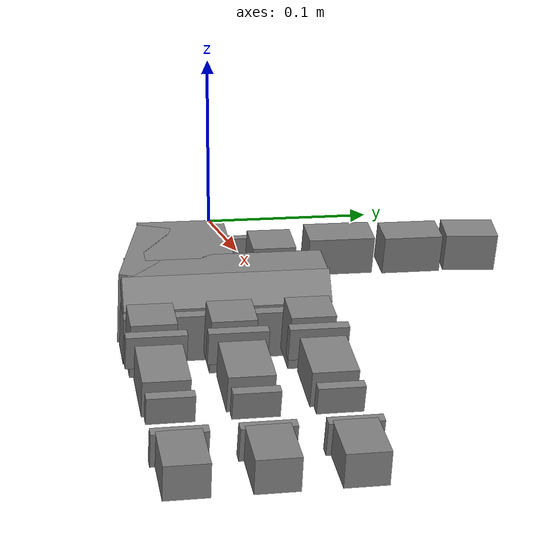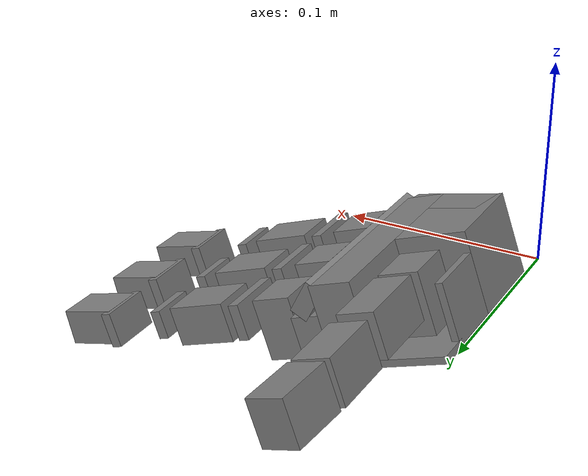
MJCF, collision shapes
<mujoco model="leap_lh">
  <compiler angle="radian" autolimits="true"/>

  <option timestep="0.01" integrator="Euler" iterations="5" ls_iterations="8">
    <flag eulerdamp="disable"/>
  </option>

  <custom>
    <numeric data="30" name="max_contact_points"/>
    <numeric data="12" name="max_geom_pairs"/>
  </custom>

  <asset>
    <material name="black" rgba="0.2 0.2 0.2 1"/>
    <material name="gray" rgba="0.5 0.5 0.5 1"/>
    <mesh name="leap_mount" file="assets/leap_mount.obj"/>

    <mesh name="palm" file="assets/palm_left.obj"/>
    <mesh name="base" file="assets/base.obj"/>
    <mesh name="proximal" file="assets/proximal.obj"/>
    <mesh name="medial" file="assets/medial.obj"/>
    <mesh name="distal" file="assets/distal.obj"/>
    <mesh name="tip" file="assets/tip.obj"/>
    <mesh name="thumb_mp_left" file="assets/thumb_mp_left.obj"/>
    <mesh name="thumb_base" file="assets/thumb_base.obj"/>
    <mesh name="thumb_proximal" file="assets/thumb_proximal.obj"/>
    <mesh name="thumb_distal" file="assets/thumb_distal.obj"/>
    <mesh name="thumb_tip" file="assets/thumb_tip.obj"/>
  </asset>

  <default>
    <default class="leap_lh">
      <geom group="3" friction="0.2" solref="0.02 1.5" solimp="0.9 0.99 0.001"/>
      <default class="visual">
        <geom group="2" type="mesh" contype="0" conaffinity="0" density="0" material="black"/>
      </default>
      <default class="tip">
        <geom size="0.01 0.012 0.016" pos="-0.0012969 -0.0335524 0.0145207"
          quat="0.703552 0.709596 -0.0292107 -0.0252203" type="box" friction="0.7 0.05 0.0002" rgba=".5 .5 .5 .3"/>
      </default>
      <default class="thumb_tip">
        <geom size="0.01 0.012 0.016" pos="-0.00127744 -0.0455619 -0.0144774"
          quat="0.708101 0.705072 -0.0294902 -0.024426" type="box" friction="0.7 0.05 0.0002" rgba=".5 .5 .5 .3"/>
      </default>

      <position kp="3.0" inheritrange="1"/>
      <joint axis="0 0 -1" damping="0.2" armature="0.00149376" actuatorfrcrange="-0.2196 0.2196" frictionloss="0.02"/>

      <default class="mcp">
        <joint range="-0.314 2.23"/>
      </default>
      <default class="rot">
        <joint range="-1.047 1.047"/>
      </default>
      <default class="pip">
        <joint range="-0.506 1.885"/>
      </default>
      <default class="dip">
        <joint range="-0.366 2.042"/>
      </default>
      <default class="thumb_cmc">
        <joint range="-2.094 0.349"/>
      </default>
      <default class="thumb_axl">
        <joint range="-2.094 0.349"/>
      </default>
      <default class="thumb_mcp">
        <joint range="-0.47 2.443"/>
      </default>
      <default class="thumb_ipl">
        <joint range="-1.34 1.88"/>
      </default>

    </default>
  </default>

  <contact>
    <exclude body1="palm" body2="if_bs"/>
    <exclude body1="palm" body2="mf_bs"/>
    <exclude body1="palm" body2="rf_bs"/>
    <exclude body1="palm" body2="th_mp"/>

    <exclude body1="palm" body2="if_px"/>
    <exclude body1="palm" body2="mf_px"/>
    <exclude body1="palm" body2="rf_px"/>
    <exclude body1="palm" body2="th_bs"/>

    <exclude body1="palm" body2="if_md"/>
    <exclude body1="palm" body2="mf_md"/>
    <exclude body1="palm" body2="rf_md"/>
    <exclude body1="palm" body2="th_px"/>

    <exclude body1="leap_mount" body2="if_bs"/>
    <exclude body1="leap_mount" body2="mf_bs"/>
    <exclude body1="leap_mount" body2="rf_bs"/>
    <exclude body1="leap_mount" body2="th_mp"/>

    <exclude body1="leap_mount" body2="if_px"/>
    <exclude body1="leap_mount" body2="mf_px"/>
    <exclude body1="leap_mount" body2="rf_px"/>
    <exclude body1="leap_mount" body2="th_bs"/>

    <exclude body1="leap_mount" body2="if_md"/>
    <exclude body1="leap_mount" body2="mf_md"/>
    <exclude body1="leap_mount" body2="rf_md"/>
    <exclude body1="leap_mount" body2="th_px"/>

    <exclude body1="if_bs" body2="mf_bs"/>
    <exclude body1="if_bs" body2="rf_bs"/>
    <exclude body1="mf_bs" body2="rf_bs"/>

    <exclude body1="th_mp" body2="if_bs"/>
    <exclude body1="th_mp" body2="mf_bs"/>
    <exclude body1="th_mp" body2="rf_bs"/>
  </contact>

  <worldbody>
    <light name="spotlight" mode="targetbodycom" target="palm" pos="3 0 4"/>
    <body name="leap_mount" pos="0 0 0" quat="1 0 0 0" childclass="leap_lh">
      <site name="grasp_site" pos="0.11 0.0 0.03" group="4"/>
      <body name="palm" pos="0.2 -0.061 -0.06045" quat="0 1 0 -0.175">
        <inertial pos="-0.12546 -0.047739 0.015867" quat="0.423786 0.570263 -0.402758 0.577054" mass="0.235"
          diaginertia="0.000405067 0.000304529 0.000179484"/>
        <geom name="palm_visual" pos="-0.0955 -0.117 0.0207" quat="9.38189e-07 9.38183e-07 0.707105 0.707109"
          class="visual" mesh="palm"/>
        <geom name="palm_collision_1" size="0.011 0.013 0.017" pos="-0.0848 -0.0996 0.0152" type="box"/>
        <geom name="palm_collision_2" size="0.011 0.013 0.017" pos="-0.0848 -0.0546 0.0152" type="box"/>
        <geom name="palm_collision_3" size="0.011 0.013 0.017" pos="-0.0848 -0.0096 0.0152" type="box"/>
        <geom name="palm_collision_4" size="0.029 0.01 0.023" pos="-0.1428 -0.0126 0.0147" quat="0.989016 0 0 0.147806"
          type="box"/>
        <geom name="palm_collision_5" size="0.01 0.06 0.015" pos="-0.1058 -0.0555 0.0232" type="box"/>
        <geom name="palm_collision_6" size="0.005 0.06 0.01" pos="-0.1078 -0.0555 0.0002" quat="0.923956 0 0.382499 0"
          type="box"/>
        <geom name="palm_collision_7" size="0.012 0.058 0.023" pos="-0.1238 -0.0575 0.0147" type="box"/>
        <geom name="palm_collision_8" size="0.022 0.026 0.023" pos="-0.1538 -0.0375 0.0147" type="box"/>
        <geom name="palm_collision_9" size="0.002 0.018 0.017" pos="-0.1738 -0.0815 0.0202" type="box"/>
        <geom name="palm_collision_10" size="0.022 0.028 0.002" pos="-0.1538 -0.0875 0.0362" type="box"/>
        <body name="if_bs" pos="-0.0825 -0.0857 0.0078" quat="0.500003 0.5 0.5 -0.499997">
          <inertial pos="-0.022516 0.033882 0.016359" quat="0.388092 0.677951 -0.247713 0.573067" mass="0.044"
            diaginertia="1.74972e-05 1.61504e-05 7.21342e-06"/>
          <joint name="if_mcp" class="mcp"/>
          <geom name="if_bs_visual" pos="0.0084 0.0077 0.01465" quat="1 0 0 0" class="visual" mesh="base"/>
          <geom name="if_bs_collision_1" size="0.01 0.003 0.017" pos="0 0.018 0.0147" type="box"/>
          <body name="if_px" pos="-0.0122 0.0381 0.0145" quat="0.500003 -0.5 -0.499997 0.5">
            <inertial pos="0.0075 -0.0002 -0.011" quat="0 0.707107 0 0.707107" mass="0.032"
              diaginertia="4.8853e-06 4.3733e-06 3.0933e-06"/>
            <joint name="if_rot" class="rot"/>
            <geom name="if_px_visual" pos="0.0096 0.0002 0.0007" quat="0.500003 -0.5 -0.5 -0.499997" class="visual"
              mesh="proximal"/>
            <geom name="if_px_collision" size="0.017 0.013 0.011" pos="0.0075 -0.0002 -0.011" type="box"/>
            <body name="if_md" pos="0.015 0.0143 -0.013" quat="0.500003 0.5 -0.5 0.499997">
              <inertial pos="0.0054215 -0.029148 0.015" quat="0.687228 0.687228 0.166487 0.166487" mass="0.037"
                diaginertia="8.28004e-06 8.1598e-06 5.39516e-06"/>
              <joint name="if_pip" class="pip"/>
              <geom name="if_md_visual" pos="0.0211 -0.0084 0.0097" quat="2.67949e-08 -1 0 0" class="visual"
                mesh="medial"/>
              <geom name="if_md_collision_1" size="0.008 0.003 0.013" pos="0 -0.02 0.015" type="box"/>
              <body name="if_ds" pos="0 -0.0361 0.0002">
                <inertial pos="-0.0008794 -0.027019 0.014594" quat="0.702905 0.710643 -0.0212937 -0.0214203"
                  mass="0.016" diaginertia="3.71863e-06 3.02396e-06 1.6518e-06"/>
                <joint name="if_dip" class="dip"/>
                <geom name="if_ds_visual" pos="0.0132 -0.0061 0.0144" quat="2.67949e-08 1 0 0" class="visual"
                  mesh="distal"/>
                <geom name="if_ds_collision_1" size="0.01 0.003 0.015" pos="0 -0.017 0.015" type="box"/>
                <geom name="if_tip" class="tip"/>
                <geom type="mesh" mesh="tip" class="visual" material="gray"/>
                <site name="if_tip" pos="0 -0.05 0.015" group="4"/>
              </body>
            </body>
          </body>
        </body>
        <body name="mf_bs" pos="-0.0825 -0.0403 0.0078" quat="0.500003 0.5 0.5 -0.499997">
          <inertial pos="-0.022516 0.033882 0.016359" quat="0.388092 0.677951 -0.247713 0.573067" mass="0.044"
            diaginertia="1.74972e-05 1.61504e-05 7.21342e-06"/>
          <joint name="mf_mcp" class="mcp"/>
          <geom name="mf_bs_visual" pos="0.0084 0.0077 0.01465" quat="1 0 0 0" class="visual" mesh="base"/>
          <geom name="mf_bs_collision_1" size="0.01 0.003 0.017" pos="0 0.018 0.0147" type="box"/>
          <body name="mf_px" pos="-0.0122 0.0381 0.0145" quat="0.500003 -0.5 -0.499997 0.5">
            <inertial pos="0.0075 -0.0002 -0.011" quat="0 0.707107 0 0.707107" mass="0.032"
              diaginertia="4.8853e-06 4.3733e-06 3.0933e-06"/>
            <joint name="mf_rot" class="rot"/>
            <geom name="mf_px_visual" pos="0.0096 0.0002 0.0007" quat="0.500003 -0.5 -0.5 -0.499997" class="visual"
              mesh="proximal"/>
            <geom name="mf_px_collision" size="0.017 0.013 0.011" pos="0.0075 -0.0002 -0.011" type="box"/>
            <body name="mf_md" pos="0.015 0.0143 -0.013" quat="0.500003 0.5 -0.5 0.499997">
              <inertial pos="0.0054215 -0.029148 0.015" quat="0.687228 0.687228 0.166487 0.166487" mass="0.037"
                diaginertia="8.28004e-06 8.1598e-06 5.39516e-06"/>
              <joint name="mf_pip" class="pip"/>
              <geom name="mf_md_visual" pos="0.0211 -0.0084 0.0097" quat="2.67949e-08 -1 0 0" class="visual"
                mesh="medial"/>
              <geom name="mf_md_collision_1" size="0.008 0.003 0.013" pos="0 -0.02 0.015" type="box"/>
              <body name="mf_ds" pos="0 -0.0361 0.0002">
                <inertial pos="-0.0008794 -0.027019 0.014594" quat="0.702905 0.710643 -0.0212937 -0.0214203"
                  mass="0.016" diaginertia="3.71863e-06 3.02396e-06 1.6518e-06"/>
                <joint name="mf_dip" class="dip"/>
                <geom name="mf_ds_visual" pos="0.0132 -0.0061 0.0144" quat="2.67949e-08 1 0 0" class="visual"
                  mesh="distal"/>
                <geom name="mf_ds_collision_1" size="0.01 0.003 0.015" pos="0 -0.017 0.015" type="box"/>
                <geom name="mf_tip" class="tip"/>
                <geom type="mesh" mesh="tip" class="visual" material="gray"/>
                <site name="mf_tip" pos="0 -0.05 0.015" group="4"/>
              </body>
            </body>
          </body>
        </body>
        <body name="rf_bs" pos="-0.0825 0.0051 0.0078" quat="0.500003 0.5 0.5 -0.499997">
          <inertial pos="-0.022516 0.033882 0.016359" quat="0.388092 0.677951 -0.247713 0.573067" mass="0.044"
            diaginertia="1.74972e-05 1.61504e-05 7.21342e-06"/>
          <joint name="rf_mcp" class="mcp"/>
          <geom name="rf_bs_visual" pos="0.0084 0.0077 0.01465" quat="1 0 0 0" class="visual" mesh="base"/>
          <geom name="rf_bs_collision_1" size="0.01 0.003 0.017" pos="0 0.018 0.0147" type="box"/>
          <body name="rf_px" pos="-0.0122 0.0381 0.0145" quat="0.500003 -0.5 -0.499997 0.5">
            <inertial pos="0.0075 -0.0002 -0.011" quat="0 0.707107 0 0.707107" mass="0.032"
              diaginertia="4.8853e-06 4.3733e-06 3.0933e-06"/>
            <joint name="rf_rot" class="rot"/>
            <geom name="rf_px_visual" pos="0.0096 0.0002 0.0007" quat="0.500003 -0.5 -0.5 -0.499997" class="visual"
              mesh="proximal"/>
            <geom name="rf_px_collision" size="0.017 0.013 0.011" pos="0.0075 -0.0002 -0.011" type="box"/>
            <body name="rf_md" pos="0.015 0.0143 -0.013" quat="0.500003 0.5 -0.5 0.499997">
              <inertial pos="0.0054215 -0.029148 0.015" quat="0.687228 0.687228 0.166487 0.166487" mass="0.037"
                diaginertia="8.28004e-06 8.1598e-06 5.39516e-06"/>
              <joint name="rf_pip" class="pip"/>
              <geom name="rf_md_visual" pos="0.0211 -0.0084 0.0097" quat="2.67949e-08 -1 0 0" class="visual"
                mesh="medial"/>
              <geom name="rf_md_collision_1" size="0.008 0.003 0.013" pos="0 -0.02 0.015" type="box"/>
              <body name="rf_ds" pos="0 -0.03609 0.0002">
                <inertial pos="-0.0008794 -0.027019 0.014594" quat="0.702905 0.710643 -0.0212937 -0.0214203"
                  mass="0.016" diaginertia="3.71863e-06 3.02396e-06 1.6518e-06"/>
                <joint name="rf_dip" class="dip"/>
                <geom name="rf_ds_visual" pos="0.0132 -0.0061 0.0145" quat="1.32679e-06 1 0 0" class="visual"
                  mesh="distal"/>
                <geom name="rf_ds_collision_1" size="0.01 0.003 0.015" pos="0 -0.017 0.015" type="box"/>
                <geom name="rf_tip" class="tip"/>
                <geom type="mesh" mesh="tip" class="visual" material="gray"/>
                <site name="rf_tip" pos="0 -0.05 0.015" group="4"/>
              </body>
            </body>
          </body>
        </body>

        <body name="th_mp" pos="-0.1448 -0.09 0.0049" quat="0.707109 0 0.707105 0">
          <inertial pos="-0.0069 0 -0.0109" quat="0 0.707107 0 0.707107" mass="0.032"
            diaginertia="4.8853e-06 4.3733e-06 3.0933e-06"/>
          <joint name="th_cmc" class="thumb_cmc"/>
          <geom name="th_mp_visual" pos="0.0439 0.0068 0.02146" quat="0.707109 0.707105 0 0" class="visual"
            mesh="thumb_mp_left"/>
          <geom name="th_mp_collision" size="0.017 0.013 0.011" pos="-0.0069 0 -0.0109" type="box"/>
          <body name="th_bs" pos="0 -0.0143 -0.013" quat="0.500003 -0.5 -0.5 -0.499997">
            <inertial pos="0 0 -0.0070806" quat="0.707107 0.707107 0 0" mass="0.003"
              diaginertia="6.1932e-07 5.351e-07 2.1516e-07"/>
            <joint name="th_axl" class="thumb_axl"/>
            <geom name="th_bs_collision_1" pos="0.01196 0 -0.0158" quat="0.707109 0.707105 0 0" class="visual"
              mesh="thumb_base"/>
            <body name="th_px" pos="0 0.0145 -0.017" quat="0.707109 -0.707105 0 0">
              <inertial pos="-0.0020593 0.015912 -0.013733" quat="0.698518 0.697382 -0.104933 0.121324" mass="0.038"
                diaginertia="9.87104e-06 9.32653e-06 4.36203e-06"/>
              <joint name="th_mcp" class="thumb_mcp"/>
              <geom name="th_px_visual" pos="0.0439 0.0579 -0.0086" quat="1 0 0 0" class="visual" mesh="thumb_proximal"/>
              <geom name="th_px_collision_1" size="0.01 0.02 0.012" pos="0 0.0105 -0.014" type="box"/>
              <body name="th_ds" pos="0 0.0466 0.0002" quat="1.32679e-06 0 0 1">
                <inertial pos="0.00096191 -0.024203 -0.014419" quat="0.35287 0.311272 -0.632839 0.614904" mass="0.049"
                  diaginertia="2.08591e-05 2.0402e-05 4.71335e-06"/>
                <joint name="th_ipl" class="thumb_ipl"/>
                <geom name="th_ds_visual" pos="0.0625 0.0784 0.0489" quat="1 0 0 0" class="visual" mesh="thumb_distal"/>
                <geom name="th_ds_collision_1" size="0.01 0.018 0.012" pos="0 -0.0085 -0.015" type="box"/>
                <geom name="th_tip" class="thumb_tip"/>
                <site name="th_tip" pos="0 -0.06 -0.015" group="4"/>
                <geom type="mesh" mesh="thumb_tip" class="visual" material="gray"/>
              </body>
            </body>
          </body>
        </body>
      </body>
    </body>
  </worldbody>

  <actuator>
    <position name="if_mcp_act" joint="if_mcp" class="mcp"/>
    <position name="if_rot_act" joint="if_rot" class="rot"/>
    <position name="if_pip_act" joint="if_pip" class="pip"/>
    <position name="if_dip_act" joint="if_dip" class="dip"/>
    <position name="mf_mcp_act" joint="mf_mcp" class="mcp"/>
    <position name="mf_rot_act" joint="mf_rot" class="rot"/>
    <position name="mf_pip_act" joint="mf_pip" class="pip"/>
    <position name="mf_dip_act" joint="mf_dip" class="dip"/>
    <position name="rf_mcp_act" joint="rf_mcp" class="mcp"/>
    <position name="rf_rot_act" joint="rf_rot" class="rot"/>
    <position name="rf_pip_act" joint="rf_pip" class="pip"/>
    <position name="rf_dip_act" joint="rf_dip" class="dip"/>
    <position name="th_cmc_act" joint="th_cmc" class="thumb_cmc"/>
    <position name="th_axl_act" joint="th_axl" class="thumb_axl"/>
    <position name="th_mcp_act" joint="th_mcp" class="thumb_mcp"/>
    <position name="th_ipl_act" joint="th_ipl" class="thumb_ipl"/>
  </actuator>
</mujoco>
